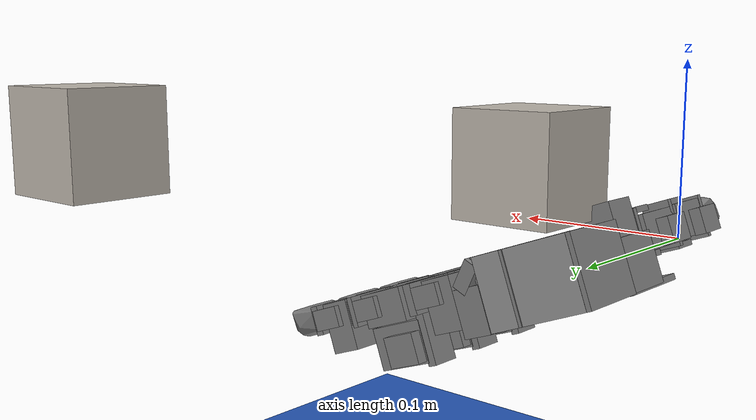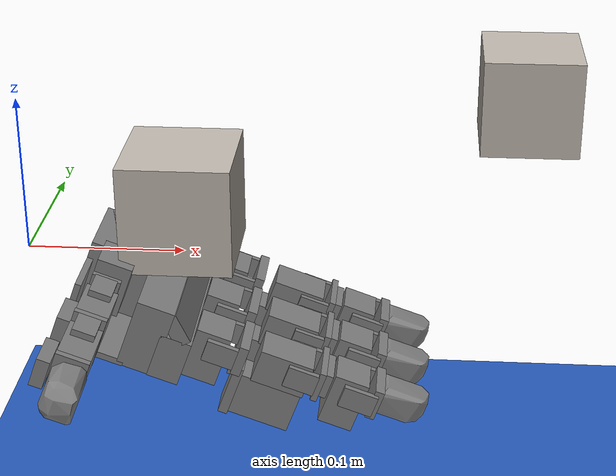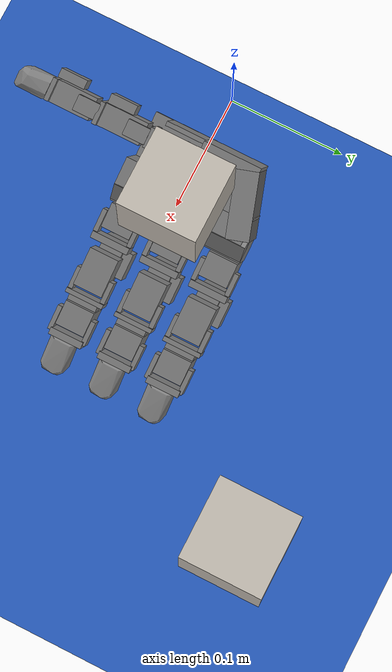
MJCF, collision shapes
<mujoco model="LEAP Hand Cube Rotation">
  <include file="../common.xml" />

  <option integrator="implicitfast" iterations="100" ls_iterations="50" />

  <!-- make contacts rigid for visual realism -->
  <default>
    <geom solimp="0.9 0.99 0.001 0.5 4"/>
  </default>

  <custom>
    <!-- agent -->
    <numeric name="agent_planner" data="5" />
    <numeric name="agent_horizon" data="0.5" />
    <numeric name="agent_timestep" data="0.01" />
    <numeric name="agent_policy_width" data="0.0035" />
    <numeric name="sampling_spline_points" data="3" />
    <numeric name="sampling_exploration" data="0.2" />
    <numeric name="sampling_trajectories" data="125" />
    <numeric name="sampling_representation" data="0" />
    <numeric name="robust_xfrc" data="0.004" />
    <numeric name="gradient_spline_points" data="6" />

    <!-- cem -->
    <numeric name="n_elite" data="3" />
    <numeric name="std_min" data="0.5" />

    <!-- Rotation counters -->
    <numeric name="residual_Curr # Rots" data="0 0 1000000"/>
    <numeric name="residual_Best # Rots" data="0 0 1000000"/>
    <numeric name="residual_Timeout" data="0.0 0.0 60.0"/>
    <numeric name="residual_Sec per Rot" data="0.0 0.0 60.0"/>
  </custom>

  <!-- Set the camera viewpoint -->
  <statistic extent="0.4" center="0.3 0.1 0" />
  <visual>
    <quality shadowsize="8192" />
    <global azimuth="180" elevation="-30" />
  </visual>

  <!-- Set default friction coefficient -->
  <default>
    <geom friction=".3" />
  </default>

  <!-- Create the scene, including floor and the interactive target cube. -->
  <worldbody>
    <light pos="0 -0.1 0.5" dir="0 0.2 -1" diffuse="0.7 0.7 0.7" specular="0.3 0.3 0.3"
      directional="true" castshadow="true" />
    <geom name="floor" pos="0 0 -0.25" size="0 0 0.05" type="plane" material="blue_grid" />
    <body name="goal" mocap="true" pos="0.325 0.17 0.0475">
      <geom type="box" size=".035 .035 .035" mass=".108" material="cube" contype="0" conaffinity="0" />
    </body>
  </worldbody>

  <sensor>
    <!-- Residuals -->
    <user name="Cube Position" dim="3" user="1 100 0 200 0.02 10" />
    <user name="Cube Orientation" dim="3" user="0 5 0 10" />
    <user name="Cube Velocity" dim="3" user="0 0 0 10" />
    <user name="Actuation" dim="16" user="0 0.0 0.0 10" />
    <user name="Grasp" dim="16" user="0 0.1 0.0 10" />
    <user name="Joint Vel" dim="16" user="0 0.0 0.0 0.1" />

    <!-- Measurements we want to use -->
    <framepos name="cube_goal_position" objtype="site" objname="grasp_site" />
    <framequat name="cube_goal_orientation" objtype="body" objname="goal" />
    <framepos name="trace0" objtype="body" objname="cube" />
  </sensor>

  <include file="../common_assets/reorientation_cube.xml" />
  <include file="leap_hand_complex.xml" />

  <keyframe>
    <key name="home"
      qpos="0.1 0.025 0.035 1 0 0 0 0.5 -0.75 0.75 0.25 0.5 0 0.75 0.25 0.5 0.75 0.75 0.25 0.65 0.9 0.75 0.6" />
  </keyframe>
</mujoco>

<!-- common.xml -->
<mujoco>

  <visual>
    <headlight ambient=".4 .4 .4" diffuse=".8 .8 .8" specular="0.1 0.1 0.1"/>
    <map znear=".01"/>
    <quality shadowsize="2048"/>
    <global elevation="-15"/>
  </visual>

  <asset>
    <texture name="blue_grid" type="2d" builtin="checker" rgb1=".02 .14 .44" rgb2=".27 .55 1" width="300" height="300" mark="edge" markrgb="1 1 1"/>
    <material name="blue_grid" texture="blue_grid" texrepeat="1 1" texuniform="true" reflectance=".2"/>

    <texture name="grey_grid" type="2d" builtin="checker" rgb1=".26 .26 .26" rgb2=".6 .6 .6" width="300" height="300" mark="edge" markrgb="1 1 1"/>
    <material name="grey_grid" texture="grey_grid" texrepeat="1 1" texuniform="true" reflectance=".2"/>
    <texture name="skybox" type="skybox" builtin="gradient" rgb1=".66 .79 1" rgb2=".9 .91 .93" width="800" height="800"/>

    <material name="self" rgba=".7 .5 .3 1"/>
    <material name="self_default" rgba=".7 .5 .3 1"/>
    <material name="self_highlight" rgba="0 .5 .3 1"/>
    <material name="effector" rgba=".7 .4 .2 1"/>
    <material name="effector_default" rgba=".7 .4 .2 1"/>
    <material name="effector_highlight" rgba="0 .5 .3 1"/>
    <material name="decoration" rgba=".2 .6 .3 1"/>
    <material name="eye" rgba="0 .2 1 1"/>
    <material name="target" rgba=".6 .3 .3 1"/>
    <material name="target_default" rgba=".6 .3 .3 1"/>
    <material name="target_highlight" rgba=".6 .3 .3 .4"/>
    <material name="site" rgba=".5 .5 .5 .3"/>
  </asset>
</mujoco>

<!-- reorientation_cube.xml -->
<mujoco>
  <asset>
    <texture name="cube" type="cube"
             fileup="../common_assets/reorientation_cube_textures/fileup.png"
             fileback="../common_assets/reorientation_cube_textures/fileback.png"
             filedown="../common_assets/reorientation_cube_textures/filedown.png"
             filefront="../common_assets/reorientation_cube_textures/filefront.png"
             fileleft="../common_assets/reorientation_cube_textures/fileleft.png"
             fileright="../common_assets/reorientation_cube_textures/fileright.png"/>
    <material name="cube" texture="cube"/>
    <texture name="graycube" type="cube"
            fileup="../common_assets/reorientation_cube_textures/grayup.png"
             fileback="../common_assets/reorientation_cube_textures/grayback.png"
             filedown="../common_assets/reorientation_cube_textures/graydown.png"
             filefront="../common_assets/reorientation_cube_textures/grayfront.png"
             fileleft="../common_assets/reorientation_cube_textures/grayleft.png"
             fileright="../common_assets/reorientation_cube_textures/grayright.png"/>
    <material name="graycube" texture="graycube"/>
  </asset>
  <worldbody>
    <light pos="0 0 1"/>
    <body name="cube" pos="0.1 0.0 0.035" quat="1 0 0 0">
      <freejoint/>
      <geom name="cube" type="box" size=".035 .035 .035" mass=".108" material="cube"/>
    </body>
  </worldbody>

   <sensor>
        <framepos name="cube_position" objtype="body" objname="cube"/>
        <framequat name="cube_orientation" objtype="body" objname="cube"/>
        <framelinvel name="cube_linear_velocity" objtype="body" objname="cube"/>
        <frameangvel name="cube_angular_velocity" objtype="body" objname="cube"/>
    </sensor>
</mujoco>

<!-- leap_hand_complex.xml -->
<mujoco model="leap_hand">

  <compiler angle="radian" meshdir="./meshes/" texturedir="./meshes/" />
  <option cone="elliptic" impratio="10" />
  <asset>
    <material name="black" rgba="0.2 0.2 0.2 1" />
    <material name="white" rgba="0.9 0.9 0.9 1" />
    <mesh name="leap_mount" file="leap_mount.obj" />
    <mesh name="palm_lower" file="palm_lower.obj" />
    <mesh name="mcp_joint" file="mcp_joint.obj" />
    <mesh name="pip" file="pip.obj" />
    <mesh name="dip" file="dip.obj" />
    <mesh name="fingertip" file="fingertip.obj" />
    <mesh name="white_tip" file="white_tip.obj" />
    <mesh name="thumb_pip" file="thumb_pip.obj" />
    <mesh name="thumb_dip" file="thumb_dip.obj" />
    <mesh name="thumb_fingertip" file="thumb_fingertip.obj" />
    <mesh name="white_tip_thumb" file="white_tip_thumb.obj" />
  </asset>
  <default>
    <position kp="0.25" kv="0.005" />
    <joint frictionloss="0.05" />
    <default class="visual">
      <geom group="2" type="mesh" contype="0" conaffinity="0" density="0" material="black" />
    </default>
    <default class="collision">
      <geom group="3" type="box" mass="0" />
    </default>

    <default class="mcp_joint">
      <joint pos="0 0 0" axis="0 0 -1"
        limited="true" range="-0.314 2.23" />
      <position ctrlrange="-0.314 2.23" />
    </default>
    <default class="pip">
      <joint pos="0 0 0" axis="0 0 -1"
        limited="true" range="-1.047 1.047" />
      <position ctrlrange="-1.047 1.047" />
    </default>
    <default class="dip">
      <joint pos="0 0 0" axis="0 0 -1"
        limited="true" range="-0.506 1.885" />
      <position ctrlrange="-0.506 1.885" />
    </default>
    <default class="fingertip">
      <joint pos="0 0 0" axis="0 0 -1"
        limited="true" range="-0.366 2.042" />
      <position ctrlrange="-0.366 2.042" />
    </default>
    <default class="thumb_base_pip">
      <joint pos="0 0 0" axis="0 0 -1"
        limited="true" range="-0.349 2.094" />
      <position ctrlrange="-0.349 2.094" />
    </default>
    <default class="thumb_pip">
      <joint pos="0 0 0" axis="0 0 -1"
        limited="true" range="-0.349 2.094" />
      <position ctrlrange="-0.349 2.094" />
    </default>
    <default class="thumb_dip">
      <joint pos="0 0 0" axis="0 0 -1"
        limited="true" range="-0.47 2.443" />
      <position ctrlrange="-0.47 2.443" />
    </default>
    <default class="thumb_fingertip">
      <joint pos="0 0 0" axis="0 0 -1"
        limited="true" range="-1.34 1.88" />
      <position ctrlrange="-1.34 1.88" />
    </default>
  </default>

  <!-- Some collision filtering -->
  <contact>
    <exclude body1="palm" body2="mcp_joint" />
    <exclude body1="palm" body2="mcp_joint_2" />
    <exclude body1="palm" body2="mcp_joint_3" />
    <exclude body1="palm" body2="pip" />
    <exclude body1="palm" body2="pip_2" />
    <exclude body1="palm" body2="pip_3" />
    <exclude body1="palm" body2="pip_4" />
    <exclude body1="palm" body2="thumb_pip" />
    <exclude body1="palm" body2="dip" />
    <exclude body1="palm" body2="dip_2" />
    <exclude body1="palm" body2="dip_3" />
    <exclude body1="palm" body2="thumb_dip" />
    <exclude body1="mcp_joint" body2="mcp_joint_2" />
    <exclude body1="mcp_joint" body2="mcp_joint_3" />
    <exclude body1="mcp_joint_2" body2="mcp_joint_3" />
    <exclude body1="pip_4" body2="mcp_joint" />
    <exclude body1="pip_4" body2="mcp_joint_2" />
    <exclude body1="pip_4" body2="mcp_joint_3" />
  </contact>

  <worldbody>
    <body name="mount" pos="0 0 0.00635" quat="1 0 0 0">
      <geom pos="0 0 0" quat="1 0 0 0" class="visual"
          mesh="leap_mount" />

      <!-- WARNING: palm position NOT exact!!! -->
      <body name="palm" pos="0.032 0.007 -0.0335" quat="0 1 0 0.7">
        <inertial pos="0.01 0 0.04" quat="0.707109 0 -0.707105 0" mass="0.237"
          diaginertia="0.00029351 0.00019217 0.00040716" />

        <!-- N.B. visualize the grasp site by removing the group tag-->
        <site name="grasp_site" pos="0.07 0.0 0.1" group="4" />

        <geom pos="0.0346999 0.06375 0.0779998" quat="0.707109 0 -0.707105 0" class="visual"
          mesh="palm_lower" />
        <geom size="0.011 0.013 0.017" pos="0.0109999 0.046 0.0889999" quat="0.707109 0 -0.707105 0"
          class="collision" />
        <geom size="0.011 0.013 0.017" pos="0.0109999 0.001 0.0889999" quat="0.707109 0 -0.707105 0"
          class="collision" />
        <geom size="0.011 0.013 0.017" pos="0.0109999 -0.044 0.0889999" quat="0.707109 0 -0.707105 0"
          class="collision" />
        <geom size="0.029 0.01 0.023" pos="0.0114996 -0.04 0.0319999"
          quat="0.699342 0.104515 -0.699338 -0.104515" class="collision" />
        <geom size="0.01 0.06 0.015" pos="0.00299981 0.003 0.068" quat="0.707109 0 -0.707105 0"
          class="collision" />
        <geom size="0.005 0.06 0.01" pos="0.0239998 0.003 0.0659998" quat="0.923805 0 -0.382864 0"
          class="collision" />
        <geom size="0.012 0.058 0.023" pos="0.0114997 0.005 0.0499999" quat="0.707109 0 -0.707105 0"
          class="collision" />
        <geom size="0.022 0.026 0.023" pos="0.0114995 -0.015 0.0199999" quat="0.707109 0 -0.707105 0"
          class="collision" />
        <geom size="0.002 0.018 0.017" pos="0.00599938 0.029 -3.79588e-08"
          quat="0.707109 0 -0.707105 0"
          class="collision" />
        <geom size="0.022 0.028 0.002" pos="-0.0100005 0.035 0.0200001" quat="0.707109 0 -0.707105 0"
          class="collision" />
        <body name="mcp_joint" pos="0.0187 0.061 0.0909999" quat="0.707109 0.707105 0 0">
          <inertial pos="-0.022516 0.033882 0.016359" quat="0.388092 0.677951 -0.247713 0.573067"
            mass="0.044" diaginertia="1.74972e-05 1.61504e-05 7.21342e-06" />
          <joint name="1" pos="0 0 0" axis="0 0 -1" range="-0.314 2.23" />
          <geom pos="0.0084 0.0077 0.01465" type="mesh" class="visual"
            mesh="mcp_joint" />
          <geom size="0.01 0.003 0.017" pos="0 0.018 0.0147" class="collision" />
          <geom size="0.014 0.02 0.01" pos="-0.027 0.042 0.015" class="collision" />
          <geom size="0.017 0.003 0.01" pos="-0.0262 0.02 0.0146" class="collision" />
          <geom size="0.01 0.012 0.004" pos="-0.0295 0.035 0.029" class="collision" />
          <geom size="0.007 0.01 0.002" pos="0 0.005 0.03" class="collision" />
          <geom size="0.007 0.01 0.002" pos="0 0.005 -0.001" class="collision" />
          <body name="pip" pos="-0.0122 0.0381 0.0145" quat="0.500003 -0.5 -0.499997 0.5">
            <inertial pos="0.0075 -0.0002 -0.011" quat="0 0.707107 0 0.707107" mass="0.032"
              diaginertia="4.8853e-06 4.3733e-06 3.0933e-06" />
            <joint name="0" pos="0 0 0" axis="0 0 -1" range="-1.047 1.047" />
            <geom pos="0.0096 0.0002 0.0007" quat="0.500003 -0.5 -0.5 -0.499997" type="mesh"
              class="visual" mesh="pip" />
            <geom size="0.017 0.013 0.011" pos="0.0075 -0.0002 -0.011" class="collision" />
            <body name="dip" pos="0.015 0.0143 -0.013" quat="0.500003 0.5 -0.5 0.499997">
              <inertial pos="0.0054215 -0.029148 0.015" quat="0.687228 0.687228 0.166487 0.166487"
                mass="0.037" diaginertia="8.28004e-06 8.1598e-06 5.39516e-06" />
              <joint name="2" pos="0 0 0" axis="0 0 -1" range="-0.506 1.885" />
              <geom pos="0.0211 -0.0084 0.0097" quat="2.67949e-08 -1 0 0" type="mesh"
                class="visual" mesh="dip" />
              <geom size="0.008 0.003 0.013" pos="0 -0.02 0.015" class="collision" />
              <geom size="0.01 0.002 0.017" pos="0 -0.016 0.015" class="collision" />
              <geom size="0.007 0.01 0.002" pos="0 -0.0045 0.03" class="collision" />
              <geom size="0.007 0.01 0.002" pos="0 -0.0045 0" class="collision" />
              <geom size="0.017 0.011 0.013" pos="0.0075 -0.035 0.015" class="collision" />
              <body name="fingertip" pos="0 -0.0361 0.0002">
                <inertial pos="-0.0008794 -0.027019 0.014594"
                  quat="0.702905 0.710643 -0.0212937 -0.0214203" mass="0.016"
                  diaginertia="3.71863e-06 3.02396e-06 1.6518e-06" />
                <joint name="3" pos="0 0 0" axis="0 0 -1" range="-0.366 2.042" />
                <geom pos="0.0132 -0.0061 0.0144" quat="2.67949e-08 1 0 0" type="mesh"
                  class="visual" mesh="fingertip" />
                <geom size="0.01 0.003 0.015" pos="0 -0.017 0.015" class="collision" />
                <geom size="0.007 0.011 0.002" pos="0 -0.006 0.03" class="collision" />
                <geom size="0.007 0.011 0.002" pos="0 -0.006 -0.001" class="collision" />
                <geom type="mesh" mesh="white_tip" class="collision" />
                <geom type="mesh" mesh="white_tip" class="visual" material="white" />
              </body>
            </body>
          </body>
        </body>
        <body name="mcp_joint_2" pos="0.0187 0.0156 0.0908999" quat="0.707109 0.707105 0 0">
          <inertial pos="-0.022516 0.033882 0.016359" quat="0.388092 0.677951 -0.247713 0.573067"
            mass="0.044" diaginertia="1.74972e-05 1.61504e-05 7.21342e-06" />
          <joint name="5" pos="0 0 0" axis="0 0 -1" range="-0.314 2.23" />
          <geom pos="0.0084 0.0077 0.01465" type="mesh" class="visual"
            mesh="mcp_joint" />
          <geom size="0.01 0.003 0.017" pos="0 0.018 0.0147" class="collision" />
          <geom size="0.014 0.02 0.01" pos="-0.027 0.042 0.015" class="collision" />
          <geom size="0.017 0.003 0.01" pos="-0.0262 0.02 0.0146" class="collision" />
          <geom size="0.01 0.012 0.004" pos="-0.0295 0.035 0.029" class="collision" />
          <geom size="0.007 0.01 0.002" pos="0 0.005 0.03" class="collision" />
          <geom size="0.007 0.01 0.002" pos="0 0.005 -0.001" class="collision" />
          <body name="pip_2" pos="-0.0122 0.0381 0.0145" quat="0.500003 -0.5 -0.499997 0.5">
            <inertial pos="0.0075 -0.0002 -0.011" quat="0 0.707107 0 0.707107" mass="0.032"
              diaginertia="4.8853e-06 4.3733e-06 3.0933e-06" />
            <joint name="4" pos="0 0 0" axis="0 0 -1" range="-1.047 1.047" />
          <geom pos="0.0096 0.0003 0.0007" quat="0.500003 -0.5 -0.5 -0.499997" type="mesh"
            class="visual" mesh="pip" />
          <geom size="0.017 0.013 0.011" pos="0.0075 -0.0002 -0.011" class="collision" />
          <body name="dip_2" pos="0.015 0.0143 -0.013" quat="0.500003 0.5 -0.5 0.499997">
            <inertial pos="0.0054215 -0.029148 0.015" quat="0.687228 0.687228 0.166487 0.166487"
              mass="0.037" diaginertia="8.28004e-06 8.1598e-06 5.39516e-06" />
            <joint name="6" pos="0 0 0" axis="0 0 -1" range="-0.506 1.885" />
            <geom pos="0.0211 -0.0084 0.0097" quat="1.32679e-06 -1 0 0" type="mesh"
              class="visual" mesh="dip" />
            <geom size="0.008 0.003 0.013" pos="0 -0.02 0.015" class="collision" />
            <geom size="0.01 0.002 0.017" pos="0 -0.016 0.015" class="collision" />
            <geom size="0.007 0.01 0.002" pos="0 -0.0045 0.03" class="collision" />
            <geom size="0.007 0.01 0.002" pos="0 -0.0045 0" class="collision" />
            <geom size="0.017 0.011 0.013" pos="0.0075 -0.035 0.015" class="collision" />
            <body name="fingertip_2" pos="0 -0.0361 0.0002">
              <inertial pos="-0.0008794 -0.027019 0.014594"
                quat="0.702905 0.710643 -0.0212937 -0.0214203" mass="0.016"
                diaginertia="3.71863e-06 3.02396e-06 1.6518e-06" />
              <joint name="7" pos="0 0 0" axis="0 0 -1" range="-0.366 2.042" />
              <geom pos="0.0132 -0.0061 0.0145" quat="1.32679e-06 1 0 0" type="mesh"
                class="visual" mesh="fingertip" />
              <geom size="0.01 0.003 0.015" pos="0 -0.017 0.015" class="collision" />
              <geom size="0.007 0.011 0.002" pos="0 -0.006 0.03" class="collision" />
              <geom size="0.007 0.011 0.002" pos="0 -0.006 -0.001" class="collision" />
              <geom type="mesh" mesh="white_tip" class="collision" />
              <geom type="mesh" mesh="white_tip" class="visual" material="white" />
            </body>
          </body>
        </body>
      </body>
      <body name="mcp_joint_3" pos="0.0187 -0.0298 0.0909099" quat="0.707109 0.707105 0 0">
        <inertial pos="-0.022516 0.033882 0.016359" quat="0.388092 0.677951 -0.247713 0.573067"
          mass="0.044" diaginertia="1.74972e-05 1.61504e-05 7.21342e-06" />
        <joint name="9" pos="0 0 0" axis="0 0 -1" range="-0.314 2.23" />
        <geom pos="0.0084 0.0077 0.01465" type="mesh" class="visual"
          mesh="mcp_joint" />
        <geom size="0.01 0.003 0.017" pos="0 0.018 0.0147" class="collision" />
        <geom size="0.014 0.02 0.01" pos="-0.027 0.042 0.015" class="collision" />
        <geom size="0.017 0.003 0.01" pos="-0.0262 0.02 0.0146" class="collision" />
        <geom size="0.01 0.012 0.004" pos="-0.0295 0.035 0.029" class="collision" />
        <geom size="0.007 0.01 0.002" pos="0 0.005 0.03" class="collision" />
        <geom size="0.007 0.01 0.002" pos="0 0.005 -0.001" class="collision" />
        <body name="pip_3" pos="-0.0122 0.0381 0.0145" quat="0.500003 -0.5 -0.499997 0.5">
          <inertial pos="0.0075 -0.0002 -0.011" quat="0 0.707107 0 0.707107" mass="0.032"
            diaginertia="4.8853e-06 4.3733e-06 3.0933e-06" />
          <joint name="8" pos="0 0 0" axis="0 0 -1" range="-1.047 1.047" />
          <geom pos="0.0096 0.0003 0.0007" quat="0.500003 -0.5 -0.5 -0.499997" type="mesh"
            class="visual" mesh="pip" />
          <geom size="0.017 0.013 0.011" pos="0.0075 -0.0002 -0.011" class="collision" />
          <body name="dip_3" pos="0.015 0.0143 -0.013" quat="0.500003 0.5 -0.5 0.499997">
            <inertial pos="0.0054215 -0.029148 0.015" quat="0.687228 0.687228 0.166487 0.166487"
              mass="0.037" diaginertia="8.28004e-06 8.1598e-06 5.39516e-06" />
            <joint name="10" pos="0 0 0" axis="0 0 -1" range="-0.506 1.885" />
            <geom pos="0.0211 -0.0084 0.0097" quat="1.32679e-06 -1 0 0" type="mesh"
              class="visual" mesh="dip" />
            <geom size="0.008 0.003 0.013" pos="0 -0.02 0.015" class="collision" />
            <geom size="0.01 0.002 0.017" pos="0 -0.016 0.015" class="collision" />
            <geom size="0.007 0.01 0.002" pos="0 -0.0045 0.03" class="collision" />
            <geom size="0.007 0.01 0.002" pos="0 -0.0045 0" class="collision" />
            <geom size="0.017 0.011 0.013" pos="0.0075 -0.035 0.015" class="collision" />
            <body name="fingertip_3" pos="0 -0.03609 0.0002">
              <inertial pos="-0.0008794 -0.027019 0.014594"
                quat="0.702905 0.710643 -0.0212937 -0.0214203" mass="0.016"
                diaginertia="3.71863e-06 3.02396e-06 1.6518e-06" />
              <joint name="11" pos="0 0 0" axis="0 0 -1" range="-0.366 2.042" />
              <geom pos="0.0132 -0.0061 0.0145" quat="1.32679e-06 1 0 0" type="mesh"
                class="visual" mesh="fingertip" />
              <geom size="0.01 0.003 0.015" pos="0 -0.017 0.015" class="collision" />
              <geom size="0.007 0.011 0.002" pos="0 -0.006 0.03" class="collision" />
              <geom size="0.007 0.011 0.002" pos="0 -0.006 -0.001" class="collision" />
              <geom type="mesh" mesh="white_tip" class="collision" />
              <geom type="mesh" mesh="white_tip" class="visual" material="white" />
            </body>
          </body>
        </body>
      </body>
      <body name="pip_4" pos="0.0215996 0.0368 0.0286999">
        <inertial pos="0.0075 -0.0002 -0.011" quat="0 0.707107 0 0.707107" mass="0.032"
          diaginertia="4.8853e-06 4.3733e-06 3.0933e-06" />
        <joint name="12" pos="0 0 0" axis="0 0 -1" range="-0.349 2.094" />
        <geom pos="-0.0053 0.0003 0.00078" quat="0.500003 -0.5 -0.5 -0.499997" type="mesh"
          class="visual" mesh="pip" />
        <geom size="0.017 0.013 0.011" pos="0.0075 -0.0002 -0.011" class="collision" />
        <body name="thumb_pip" pos="0 0.0143 -0.013" quat="0.500003 0.5 -0.5 0.499997">
          <inertial pos="0 0 -0.0070806" quat="0.707107 0.707107 0 0" mass="0.003"
            diaginertia="6.1932e-07 5.351e-07 2.1516e-07" />
          <joint name="13" pos="0 0 0" axis="0 0 -1" range="-0.47 2.443" />
          <geom pos="0.01196 0 -0.0158" quat="0.707109 0.707105 0 0" type="mesh"
            class="visual" mesh="thumb_pip" />
          <geom size="0.009 0.0165 0.002" pos="0 0 -0.0015" class="collision" />
          <geom size="0.007 0.002 0.01" pos="0 -0.015 -0.013" class="collision" />
          <geom size="0.007 0.002 0.01" pos="0 0.015 -0.013" class="collision" />
          <body name="thumb_dip" pos="0 0.0145 -0.017" quat="0.707109 -0.707105 0 0">
            <inertial pos="-0.0020593 0.015912 -0.013733"
              quat="0.698518 0.697382 -0.104933 0.121324"
              mass="0.038" diaginertia="9.87104e-06 9.32653e-06 4.36203e-06" />
            <joint name="14" pos="0 0 0" axis="0 0 -1" range="-1.2 1.9" />
            <geom pos="0.0439 0.0579 -0.0086" type="mesh" class="visual"
              mesh="thumb_dip" />
            <geom size="0.01 0.02 0.012" pos="0 0.0105 -0.014" class="collision" />
            <geom size="0.01 0.002 0.016" pos="0 0.031 -0.015" class="collision" />
            <geom size="0.007 0.01 0.002" pos="0 0.042 0.001" class="collision" />
            <geom size="0.007 0.01 0.002" pos="0 0.042 -0.029" class="collision" />
            <geom size="0.005 0.012 0.009" pos="-0.0135 0.0175 -0.011656" class="collision" />
            <body name="thumb_fingertip" pos="0 0.0466 0.0002" quat="1.32679e-06 0 0 1">
              <inertial pos="0.00096191 -0.024203 -0.014419"
                quat="0.35287 0.311272 -0.632839 0.614904" mass="0.049"
                diaginertia="2.08591e-05 2.0402e-05 4.71335e-06" />
              <joint name="15" pos="0 0 0" axis="0 0 -1" range="-1.34 1.88" />
              <geom pos="0.0625 0.0784 0.0489" type="mesh" class="visual"
                mesh="thumb_fingertip" />
              <geom size="0.01 0.018 0.012" pos="0 -0.0085 -0.015" class="collision" />
              <geom size="0.01 0.002 0.015" pos="0 -0.029 -0.014" class="collision" />
              <geom size="0.004 0.012 0.009" pos="0.015 -0.0175 -0.0115" class="collision" />
              <geom type="mesh" mesh="white_tip_thumb" class="collision" />
              <geom type="mesh" mesh="white_tip_thumb" class="visual" material="white" />
            </body>
          </body>
        </body>
      </body>
    </body>
    </body>
  </worldbody>

  <actuator>
    <position name="1" joint="1" class="mcp_joint" />
    <position name="0" joint="0" class="pip" />
    <position name="2" joint="2" class="dip" />
    <position name="3" joint="3" class="fingertip" />
    <position name="5" joint="5" class="mcp_joint" />
    <position name="4" joint="4" class="pip" />
    <position name="6" joint="6" class="dip" />
    <position name="7" joint="7" class="fingertip" />
    <position name="9" joint="9" class="mcp_joint" />
    <position name="8" joint="8" class="pip" />
    <position name="10" joint="10" class="dip" />
    <position name="11" joint="11" class="fingertip" />
    <position name="12" joint="12" class="thumb_base_pip" />
    <position name="13" joint="13" class="thumb_pip" />
    <position name="14" joint="14" class="thumb_dip" />
    <position name="15" joint="15" class="thumb_fingertip" />
  </actuator>

  <sensor>
    <framepos name="trace1" objtype="body" objname="fingertip" />
    <framepos name="trace2" objtype="body" objname="fingertip_2" />
    <framepos name="trace3" objtype="body" objname="fingertip_3" />
    <framepos name="trace4" objtype="body" objname="thumb_fingertip" />
  </sensor>
</mujoco>
